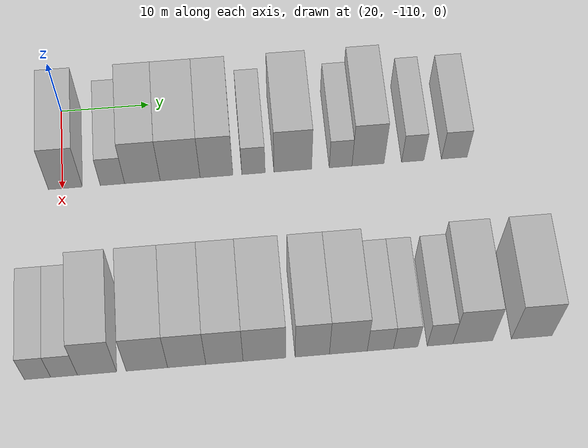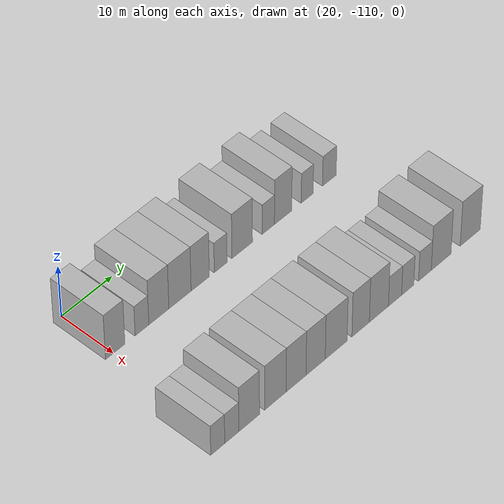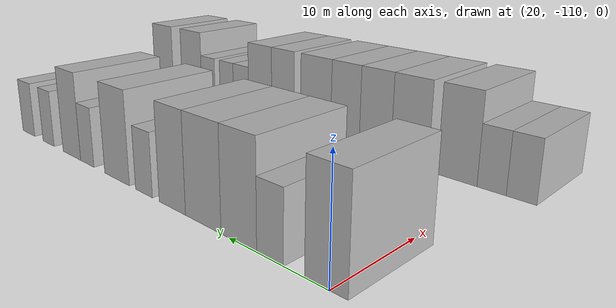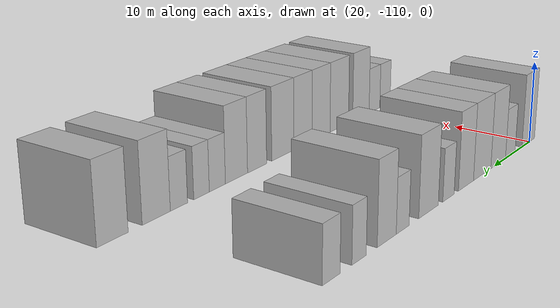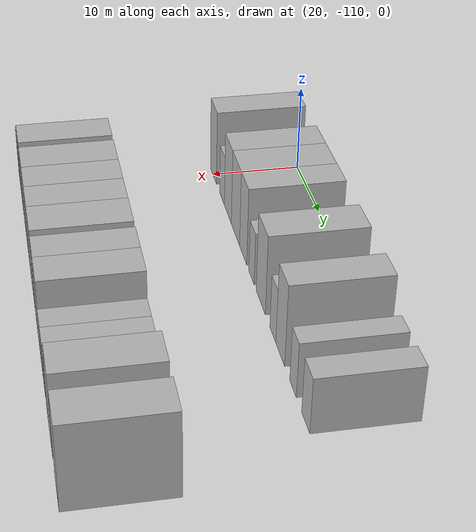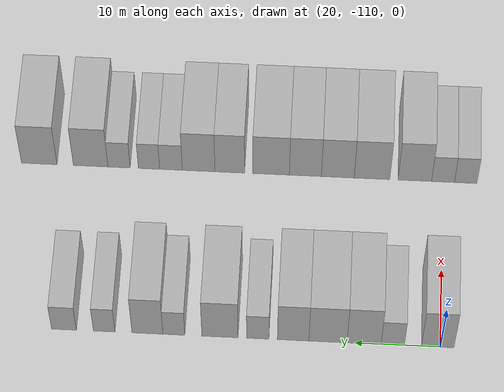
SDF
<sdf version="1.6">
 <world name="default">
  <model name="building_27">
   <static>1</static>
   <pose>25.0000 -109.6713 0 0.000000 0.000000 0.000000</pose>
   <link name="link">
    <pose>0 0 4.50 0 0 0</pose>
    <collision name="collision"><geometry><box><size>10.0000 3.7821 9.0000</size></box></geometry></collision>
    <visual name="visual">
     <cast_shadows>0</cast_shadows>
     <geometry><box><size>10.0000 3.7821 9.0000</size></box></geometry>
     <material>
      <script>
       <uri>model://HANNAS_wall/materials/scripts</uri>
       <uri>model://HANNAS_wall/materials/textures</uri>
       <name>vrc/HANNAS_wall</name>
      </script>
     </material>
    </visual>
   </link>
  </model>
  <model name="building_28">
   <static>1</static>
   <pose>25.0000 -104.4233 0 0.000000 0.000000 0.000000</pose>
   <link name="link">
    <pose>0 0 3.00 0 0 0</pose>
    <collision name="collision"><geometry><box><size>10.0000 2.7140 6.0000</size></box></geometry></collision>
    <visual name="visual">
     <cast_shadows>0</cast_shadows>
     <geometry><box><size>10.0000 2.7140 6.0000</size></box></geometry>
     <material>
      <script>
       <uri>model://HANNAS_wall/materials/scripts</uri>
       <uri>model://HANNAS_wall/materials/textures</uri>
       <name>vrc/HANNAS_wall</name>
      </script>
     </material>
    </visual>
   </link>
  </model>
  <model name="building_29">
   <static>1</static>
   <pose>25.0000 -101.0725 0 0.000000 0.000000 0.000000</pose>
   <link name="link">
    <pose>0 0 4.50 0 0 0</pose>
    <collision name="collision"><geometry><box><size>10.0000 3.9875 9.0000</size></box></geometry></collision>
    <visual name="visual">
     <cast_shadows>0</cast_shadows>
     <geometry><box><size>10.0000 3.9875 9.0000</size></box></geometry>
     <material>
      <script>
       <uri>model://HANNAS_wall/materials/scripts</uri>
       <uri>model://HANNAS_wall/materials/textures</uri>
       <name>vrc/HANNAS_wall</name>
      </script>
     </material>
    </visual>
   </link>
  </model>
  <model name="building_30">
   <static>1</static>
   <pose>25.0000 -96.8484 0 0.000000 0.000000 0.000000</pose>
   <link name="link">
    <pose>0 0 4.50 0 0 0</pose>
    <collision name="collision"><geometry><box><size>10.0000 4.4606 9.0000</size></box></geometry></collision>
    <visual name="visual">
     <cast_shadows>0</cast_shadows>
     <geometry><box><size>10.0000 4.4606 9.0000</size></box></geometry>
     <material>
      <script>
       <uri>model://HANNAS_wall/materials/scripts</uri>
       <uri>model://HANNAS_wall/materials/textures</uri>
       <name>vrc/HANNAS_wall</name>
      </script>
     </material>
    </visual>
   </link>
  </model>
  <model name="building_31">
   <static>1</static>
   <pose>25.0000 -92.7761 0 0.000000 0.000000 0.000000</pose>
   <link name="link">
    <pose>0 0 4.50 0 0 0</pose>
    <collision name="collision"><geometry><box><size>10.0000 3.6841 9.0000</size></box></geometry></collision>
    <visual name="visual">
     <cast_shadows>0</cast_shadows>
     <geometry><box><size>10.0000 3.6841 9.0000</size></box></geometry>
     <material>
      <script>
       <uri>model://HANNAS_wall/materials/scripts</uri>
       <uri>model://HANNAS_wall/materials/textures</uri>
       <name>vrc/HANNAS_wall</name>
      </script>
     </material>
    </visual>
   </link>
  </model>
  <model name="building_32">
   <static>1</static>
   <pose>25.0000 -88.6249 0 0.000000 0.000000 0.000000</pose>
   <link name="link">
    <pose>0 0 3.00 0 0 0</pose>
    <collision name="collision"><geometry><box><size>10.0000 2.6183 6.0000</size></box></geometry></collision>
    <visual name="visual">
     <cast_shadows>0</cast_shadows>
     <geometry><box><size>10.0000 2.6183 6.0000</size></box></geometry>
     <material>
      <script>
       <uri>model://HANNAS_wall/materials/scripts</uri>
       <uri>model://HANNAS_wall/materials/textures</uri>
       <name>vrc/HANNAS_wall</name>
      </script>
     </material>
    </visual>
   </link>
  </model>
  <model name="building_33">
   <static>1</static>
   <pose>25.0000 -84.1977 0 0.000000 0.000000 0.000000</pose>
   <link name="link">
    <pose>0 0 4.50 0 0 0</pose>
    <collision name="collision"><geometry><box><size>10.0000 4.2360 9.0000</size></box></geometry></collision>
    <visual name="visual">
     <cast_shadows>0</cast_shadows>
     <geometry><box><size>10.0000 4.2360 9.0000</size></box></geometry>
     <material>
      <script>
       <uri>model://HANNAS_wall/materials/scripts</uri>
       <uri>model://HANNAS_wall/materials/textures</uri>
       <name>vrc/HANNAS_wall</name>
      </script>
     </material>
    </visual>
   </link>
  </model>
  <model name="building_34">
   <static>1</static>
   <pose>25.0000 -78.7950 0 0.000000 0.000000 0.000000</pose>
   <link name="link">
    <pose>0 0 3.00 0 0 0</pose>
    <collision name="collision"><geometry><box><size>10.0000 2.5693 6.0000</size></box></geometry></collision>
    <visual name="visual">
     <cast_shadows>0</cast_shadows>
     <geometry><box><size>10.0000 2.5693 6.0000</size></box></geometry>
     <material>
      <script>
       <uri>model://HANNAS_wall/materials/scripts</uri>
       <uri>model://HANNAS_wall/materials/textures</uri>
       <name>vrc/HANNAS_wall</name>
      </script>
     </material>
    </visual>
   </link>
  </model>
  <model name="building_35">
   <static>1</static>
   <pose>25.0000 -75.6955 0 0.000000 0.000000 0.000000</pose>
   <link name="link">
    <pose>0 0 4.50 0 0 0</pose>
    <collision name="collision"><geometry><box><size>10.0000 3.6298 9.0000</size></box></geometry></collision>
    <visual name="visual">
     <cast_shadows>0</cast_shadows>
     <geometry><box><size>10.0000 3.6298 9.0000</size></box></geometry>
     <material>
      <script>
       <uri>model://HANNAS_wall/materials/scripts</uri>
       <uri>model://HANNAS_wall/materials/textures</uri>
       <name>vrc/HANNAS_wall</name>
      </script>
     </material>
    </visual>
   </link>
  </model>
  <model name="building_36">
   <static>1</static>
   <pose>25.0000 -70.6158 0 0.000000 0.000000 0.000000</pose>
   <link name="link">
    <pose>0 0 3.00 0 0 0</pose>
    <collision name="collision"><geometry><box><size>10.0000 2.5295 6.0000</size></box></geometry></collision>
    <visual name="visual">
     <cast_shadows>0</cast_shadows>
     <geometry><box><size>10.0000 2.5295 6.0000</size></box></geometry>
     <material>
      <script>
       <uri>model://HANNAS_wall/materials/scripts</uri>
       <uri>model://HANNAS_wall/materials/textures</uri>
       <name>vrc/HANNAS_wall</name>
      </script>
     </material>
    </visual>
   </link>
  </model>
  <model name="building_37">
   <static>1</static>
   <pose>25.0000 -65.8917 0 0.000000 0.000000 0.000000</pose>
   <link name="link">
    <pose>0 0 3.00 0 0 0</pose>
    <collision name="collision"><geometry><box><size>10.0000 2.9186 6.0000</size></box></geometry></collision>
    <visual name="visual">
     <cast_shadows>0</cast_shadows>
     <geometry><box><size>10.0000 2.9186 6.0000</size></box></geometry>
     <material>
      <script>
       <uri>model://HANNAS_wall/materials/scripts</uri>
       <uri>model://HANNAS_wall/materials/textures</uri>
       <name>vrc/HANNAS_wall</name>
      </script>
     </material>
    </visual>
   </link>
  </model>
  <model name="building_124">
   <static>1</static>
   <pose>47.0000 -112.8059 0 0.000000 0.000000 0.000000</pose>
   <link name="link">
    <pose>0 0 3.00 0 0 0</pose>
    <collision name="collision"><geometry><box><size>10.0000 2.7268 6.0000</size></box></geometry></collision>
    <visual name="visual">
     <cast_shadows>0</cast_shadows>
     <geometry><box><size>10.0000 2.7268 6.0000</size></box></geometry>
     <material>
      <script>
       <uri>model://HANNAS_wall/materials/scripts</uri>
       <uri>model://HANNAS_wall/materials/textures</uri>
       <name>vrc/HANNAS_wall</name>
      </script>
     </material>
    </visual>
   </link>
  </model>
  <model name="building_125">
   <static>1</static>
   <pose>47.0000 -110.0570 0 0.000000 0.000000 0.000000</pose>
   <link name="link">
    <pose>0 0 3.00 0 0 0</pose>
    <collision name="collision"><geometry><box><size>10.0000 2.7709 6.0000</size></box></geometry></collision>
    <visual name="visual">
     <cast_shadows>0</cast_shadows>
     <geometry><box><size>10.0000 2.7709 6.0000</size></box></geometry>
     <material>
      <script>
       <uri>model://HANNAS_wall/materials/scripts</uri>
       <uri>model://HANNAS_wall/materials/textures</uri>
       <name>vrc/HANNAS_wall</name>
      </script>
     </material>
    </visual>
   </link>
  </model>
  <model name="building_126">
   <static>1</static>
   <pose>47.0000 -106.6357 0 0.000000 0.000000 0.000000</pose>
   <link name="link">
    <pose>0 0 4.50 0 0 0</pose>
    <collision name="collision"><geometry><box><size>10.0000 4.0716 9.0000</size></box></geometry></collision>
    <visual name="visual">
     <cast_shadows>0</cast_shadows>
     <geometry><box><size>10.0000 4.0716 9.0000</size></box></geometry>
     <material>
      <script>
       <uri>model://HANNAS_wall/materials/scripts</uri>
       <uri>model://HANNAS_wall/materials/textures</uri>
       <name>vrc/HANNAS_wall</name>
      </script>
     </material>
    </visual>
   </link>
  </model>
  <model name="building_127">
   <static>1</static>
   <pose>47.0000 -101.4383 0 0.000000 0.000000 0.000000</pose>
   <link name="link">
    <pose>0 0 4.50 0 0 0</pose>
    <collision name="collision"><geometry><box><size>10.0000 4.3233 9.0000</size></box></geometry></collision>
    <visual name="visual">
     <cast_shadows>0</cast_shadows>
     <geometry><box><size>10.0000 4.3233 9.0000</size></box></geometry>
     <material>
      <script>
       <uri>model://HANNAS_wall/materials/scripts</uri>
       <uri>model://HANNAS_wall/materials/textures</uri>
       <name>vrc/HANNAS_wall</name>
      </script>
     </material>
    </visual>
   </link>
  </model>
  <model name="building_128">
   <static>1</static>
   <pose>47.0000 -97.2813 0 0.000000 0.000000 0.000000</pose>
   <link name="link">
    <pose>0 0 4.50 0 0 0</pose>
    <collision name="collision"><geometry><box><size>10.0000 3.9908 9.0000</size></box></geometry></collision>
    <visual name="visual">
     <cast_shadows>0</cast_shadows>
     <geometry><box><size>10.0000 3.9908 9.0000</size></box></geometry>
     <material>
      <script>
       <uri>model://HANNAS_wall/materials/scripts</uri>
       <uri>model://HANNAS_wall/materials/textures</uri>
       <name>vrc/HANNAS_wall</name>
      </script>
     </material>
    </visual>
   </link>
  </model>
  <model name="building_129">
   <static>1</static>
   <pose>47.0000 -93.3379 0 0.000000 0.000000 0.000000</pose>
   <link name="link">
    <pose>0 0 4.50 0 0 0</pose>
    <collision name="collision"><geometry><box><size>10.0000 3.8960 9.0000</size></box></geometry></collision>
    <visual name="visual">
     <cast_shadows>0</cast_shadows>
     <geometry><box><size>10.0000 3.8960 9.0000</size></box></geometry>
     <material>
      <script>
       <uri>model://HANNAS_wall/materials/scripts</uri>
       <uri>model://HANNAS_wall/materials/textures</uri>
       <name>vrc/HANNAS_wall</name>
      </script>
     </material>
    </visual>
   </link>
  </model>
  <model name="building_130">
   <static>1</static>
   <pose>47.0000 -89.1614 0 0.000000 0.000000 0.000000</pose>
   <link name="link">
    <pose>0 0 4.50 0 0 0</pose>
    <collision name="collision"><geometry><box><size>10.0000 4.4569 9.0000</size></box></geometry></collision>
    <visual name="visual">
     <cast_shadows>0</cast_shadows>
     <geometry><box><size>10.0000 4.4569 9.0000</size></box></geometry>
     <material>
      <script>
       <uri>model://HANNAS_wall/materials/scripts</uri>
       <uri>model://HANNAS_wall/materials/textures</uri>
       <name>vrc/HANNAS_wall</name>
      </script>
     </material>
    </visual>
   </link>
  </model>
  <model name="building_131">
   <static>1</static>
   <pose>47.0000 -84.1271 0 0.000000 0.000000 0.000000</pose>
   <link name="link">
    <pose>0 0 4.50 0 0 0</pose>
    <collision name="collision"><geometry><box><size>10.0000 3.6119 9.0000</size></box></geometry></collision>
    <visual name="visual">
     <cast_shadows>0</cast_shadows>
     <geometry><box><size>10.0000 3.6119 9.0000</size></box></geometry>
     <material>
      <script>
       <uri>model://HANNAS_wall/materials/scripts</uri>
       <uri>model://HANNAS_wall/materials/textures</uri>
       <name>vrc/HANNAS_wall</name>
      </script>
     </material>
    </visual>
   </link>
  </model>
  <model name="building_132">
   <static>1</static>
   <pose>47.0000 -80.3286 0 0.000000 0.000000 0.000000</pose>
   <link name="link">
    <pose>0 0 4.50 0 0 0</pose>
    <collision name="collision"><geometry><box><size>10.0000 3.9851 9.0000</size></box></geometry></collision>
    <visual name="visual">
     <cast_shadows>0</cast_shadows>
     <geometry><box><size>10.0000 3.9851 9.0000</size></box></geometry>
     <material>
      <script>
       <uri>model://HANNAS_wall/materials/scripts</uri>
       <uri>model://HANNAS_wall/materials/textures</uri>
       <name>vrc/HANNAS_wall</name>
      </script>
     </material>
    </visual>
   </link>
  </model>
  <model name="building_133">
   <static>1</static>
   <pose>47.0000 -76.9502 0 0.000000 0.000000 0.000000</pose>
   <link name="link">
    <pose>0 0 3.00 0 0 0</pose>
    <collision name="collision"><geometry><box><size>10.0000 2.7717 6.0000</size></box></geometry></collision>
    <visual name="visual">
     <cast_shadows>0</cast_shadows>
     <geometry><box><size>10.0000 2.7717 6.0000</size></box></geometry>
     <material>
      <script>
       <uri>model://HANNAS_wall/materials/scripts</uri>
       <uri>model://HANNAS_wall/materials/textures</uri>
       <name>vrc/HANNAS_wall</name>
      </script>
     </material>
    </visual>
   </link>
  </model>
  <model name="building_134">
   <static>1</static>
   <pose>47.0000 -74.2717 0 0.000000 0.000000 0.000000</pose>
   <link name="link">
    <pose>0 0 3.00 0 0 0</pose>
    <collision name="collision"><geometry><box><size>10.0000 2.5854 6.0000</size></box></geometry></collision>
    <visual name="visual">
     <cast_shadows>0</cast_shadows>
     <geometry><box><size>10.0000 2.5854 6.0000</size></box></geometry>
     <material>
      <script>
       <uri>model://HANNAS_wall/materials/scripts</uri>
       <uri>model://HANNAS_wall/materials/textures</uri>
       <name>vrc/HANNAS_wall</name>
      </script>
     </material>
    </visual>
   </link>
  </model>
  <model name="building_135">
   <static>1</static>
   <pose>47.0000 -70.6216 0 0.000000 0.000000 0.000000</pose>
   <link name="link">
    <pose>0 0 3.00 0 0 0</pose>
    <collision name="collision"><geometry><box><size>10.0000 2.7148 6.0000</size></box></geometry></collision>
    <visual name="visual">
     <cast_shadows>0</cast_shadows>
     <geometry><box><size>10.0000 2.7148 6.0000</size></box></geometry>
     <material>
      <script>
       <uri>model://HANNAS_wall/materials/scripts</uri>
       <uri>model://HANNAS_wall/materials/textures</uri>
       <name>vrc/HANNAS_wall</name>
      </script>
     </material>
    </visual>
   </link>
  </model>
  <model name="building_136">
   <static>1</static>
   <pose>47.0000 -67.1503 0 0.000000 0.000000 0.000000</pose>
   <link name="link">
    <pose>0 0 4.50 0 0 0</pose>
    <collision name="collision"><geometry><box><size>10.0000 4.2277 9.0000</size></box></geometry></collision>
    <visual name="visual">
     <cast_shadows>0</cast_shadows>
     <geometry><box><size>10.0000 4.2277 9.0000</size></box></geometry>
     <material>
      <script>
       <uri>model://HANNAS_wall/materials/scripts</uri>
       <uri>model://HANNAS_wall/materials/textures</uri>
       <name>vrc/HANNAS_wall</name>
      </script>
     </material>
    </visual>
   </link>
  </model>
  <model name="building_137">
   <static>1</static>
   <pose>47.0000 -60.8649 0 0.000000 0.000000 0.000000</pose>
   <link name="link">
    <pose>0 0 4.50 0 0 0</pose>
    <collision name="collision"><geometry><box><size>10.0000 4.3432 9.0000</size></box></geometry></collision>
    <visual name="visual">
     <cast_shadows>0</cast_shadows>
     <geometry><box><size>10.0000 4.3432 9.0000</size></box></geometry>
     <material>
      <script>
       <uri>model://HANNAS_wall/materials/scripts</uri>
       <uri>model://HANNAS_wall/materials/textures</uri>
       <name>vrc/HANNAS_wall</name>
      </script>
     </material>
    </visual>
   </link>
  </model>
 </world>
</sdf>
